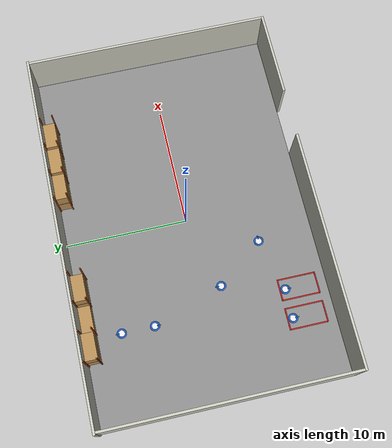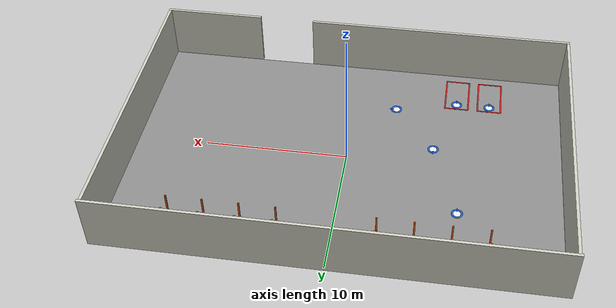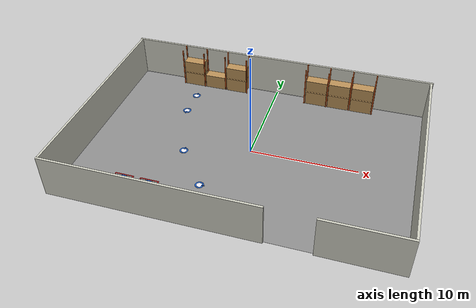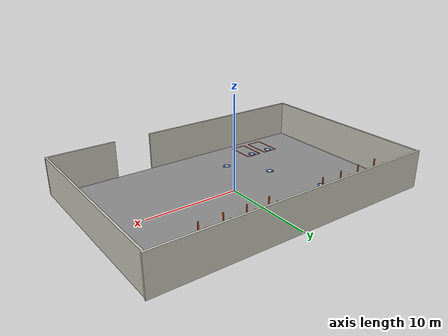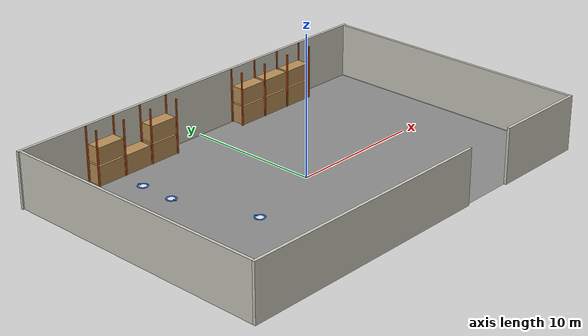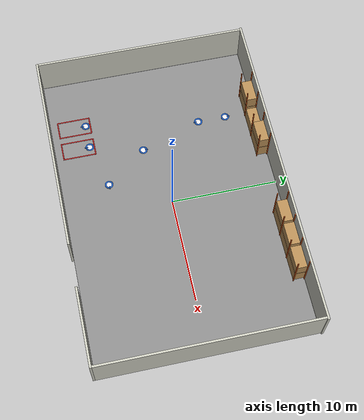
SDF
<sdf version="1.8">
 <world name="warehouse">
  <model name="Floor">
   <static>true</static>
   <link name="link">
    <collision name="collision">
     <geometry><plane><normal>0 0 1</normal><size>30 20</size></plane></geometry>
     <surface><friction><ode><mu>1.0</mu><mu2>1.0</mu2></ode></friction></surface>
    </collision>
    <visual name="visual">
     <geometry><plane><normal>0 0 1</normal><size>30 20</size></plane></geometry>
     <material><ambient>0.55 0.55 0.55 1</ambient><diffuse>0.55 0.55 0.55 1</diffuse></material>
    </visual>
   </link>
  </model>
  <model name="WallNorth">
   <static>true</static>
   <link name="link">
    <collision name="wallnorth_collision">
     <pose>0.000 10.100 2.000 0 0 0</pose>
     <geometry><box><size>30.600 0.200 4.000</size></box></geometry>
    </collision>
    <visual name="wallnorth_visual">
     <pose>0.000 10.100 2.000 0 0 0</pose>
     <geometry><box><size>30.600 0.200 4.000</size></box></geometry>
     <material><ambient>0.80 0.80 0.75 1</ambient><diffuse>0.80 0.80 0.75 1</diffuse></material>
    </visual>
   </link>
  </model>
  <model name="WallSouthWest">
   <static>true</static>
   <link name="link">
    <collision name="wallsouthwest_collision">
     <pose>-5.600 -10.100 2.000 0 0 0</pose>
     <geometry><box><size>19.200 0.200 4.000</size></box></geometry>
    </collision>
    <visual name="wallsouthwest_visual">
     <pose>-5.600 -10.100 2.000 0 0 0</pose>
     <geometry><box><size>19.200 0.200 4.000</size></box></geometry>
     <material><ambient>0.80 0.80 0.75 1</ambient><diffuse>0.80 0.80 0.75 1</diffuse></material>
    </visual>
   </link>
  </model>
  <model name="WallSouthEast">
   <static>true</static>
   <link name="link">
    <collision name="wallsoutheast_collision">
     <pose>11.600 -10.100 2.000 0 0 0</pose>
     <geometry><box><size>7.200 0.200 4.000</size></box></geometry>
    </collision>
    <visual name="wallsoutheast_visual">
     <pose>11.600 -10.100 2.000 0 0 0</pose>
     <geometry><box><size>7.200 0.200 4.000</size></box></geometry>
     <material><ambient>0.80 0.80 0.75 1</ambient><diffuse>0.80 0.80 0.75 1</diffuse></material>
    </visual>
   </link>
  </model>
  <model name="WallEast">
   <static>true</static>
   <link name="link">
    <collision name="walleast_collision">
     <pose>15.100 0.000 2.000 0 0 0</pose>
     <geometry><box><size>0.200 20.000 4.000</size></box></geometry>
    </collision>
    <visual name="walleast_visual">
     <pose>15.100 0.000 2.000 0 0 0</pose>
     <geometry><box><size>0.200 20.000 4.000</size></box></geometry>
     <material><ambient>0.80 0.80 0.75 1</ambient><diffuse>0.80 0.80 0.75 1</diffuse></material>
    </visual>
   </link>
  </model>
  <model name="WallWest">
   <static>true</static>
   <link name="link">
    <collision name="wallwest_collision">
     <pose>-15.100 0.000 2.000 0 0 0</pose>
     <geometry><box><size>0.200 20.000 4.000</size></box></geometry>
    </collision>
    <visual name="wallwest_visual">
     <pose>-15.100 0.000 2.000 0 0 0</pose>
     <geometry><box><size>0.200 20.000 4.000</size></box></geometry>
     <material><ambient>0.80 0.80 0.75 1</ambient><diffuse>0.80 0.80 0.75 1</diffuse></material>
    </visual>
   </link>
  </model>
  <model name="RackRowA_West">
   <static>true</static>
   <link name="link">
    <collision name="a_frame0_front_collision">
     <pose>-10.000 8.940 2.000 0 0 0</pose>
     <geometry><box><size>0.100 0.080 4.000</size></box></geometry>
    </collision>
    <visual name="a_frame0_front_visual">
     <pose>-10.000 8.940 2.000 0 0 0</pose>
     <geometry><box><size>0.100 0.080 4.000</size></box></geometry>
     <material><ambient>0.85 0.35 0.10 1</ambient><diffuse>0.85 0.35 0.10 1</diffuse></material>
    </visual>
    <collision name="a_frame0_rear_collision">
     <pose>-10.000 9.960 2.000 0 0 0</pose>
     <geometry><box><size>0.100 0.080 4.000</size></box></geometry>
    </collision>
    <visual name="a_frame0_rear_visual">
     <pose>-10.000 9.960 2.000 0 0 0</pose>
     <geometry><box><size>0.100 0.080 4.000</size></box></geometry>
     <material><ambient>0.85 0.35 0.10 1</ambient><diffuse>0.85 0.35 0.10 1</diffuse></material>
    </visual>
    <collision name="a_frame1_front_collision">
     <pose>-7.700 8.940 2.000 0 0 0</pose>
     <geometry><box><size>0.100 0.080 4.000</size></box></geometry>
    </collision>
    <visual name="a_frame1_front_visual">
     <pose>-7.700 8.940 2.000 0 0 0</pose>
     <geometry><box><size>0.100 0.080 4.000</size></box></geometry>
     <material><ambient>0.85 0.35 0.10 1</ambient><diffuse>0.85 0.35 0.10 1</diffuse></material>
    </visual>
    <collision name="a_frame1_rear_collision">
     <pose>-7.700 9.960 2.000 0 0 0</pose>
     <geometry><box><size>0.100 0.080 4.000</size></box></geometry>
    </collision>
    <visual name="a_frame1_rear_visual">
     <pose>-7.700 9.960 2.000 0 0 0</pose>
     <geometry><box><size>0.100 0.080 4.000</size></box></geometry>
     <material><ambient>0.85 0.35 0.10 1</ambient><diffuse>0.85 0.35 0.10 1</diffuse></material>
    </visual>
    <collision name="a_frame2_front_collision">
     <pose>-5.400 8.940 2.000 0 0 0</pose>
     <geometry><box><size>0.100 0.080 4.000</size></box></geometry>
    </collision>
    <visual name="a_frame2_front_visual">
     <pose>-5.400 8.940 2.000 0 0 0</pose>
     <geometry><box><size>0.100 0.080 4.000</size></box></geometry>
     <material><ambient>0.85 0.35 0.10 1</ambient><diffuse>0.85 0.35 0.10 1</diffuse></material>
    </visual>
    <collision name="a_frame2_rear_collision">
     <pose>-5.400 9.960 2.000 0 0 0</pose>
     <geometry><box><size>0.100 0.080 4.000</size></box></geometry>
    </collision>
    <visual name="a_frame2_rear_visual">
     <pose>-5.400 9.960 2.000 0 0 0</pose>
     <geometry><box><size>0.100 0.080 4.000</size></box></geometry>
     <material><ambient>0.85 0.35 0.10 1</ambient><diffuse>0.85 0.35 0.10 1</diffuse></material>
    </visual>
    <collision name="a_frame3_front_collision">
     <pose>-3.100 8.940 2.000 0 0 0</pose>
     <geometry><box><size>0.100 0.080 4.000</size></box></geometry>
    </collision>
    <visual name="a_frame3_front_visual">
     <pose>-3.100 8.940 2.000 0 0 0</pose>
     <geometry><box><size>0.100 0.080 4.000</size></box></geometry>
     <material><ambient>0.85 0.35 0.10 1</ambient><diffuse>0.85 0.35 0.10 1</diffuse></material>
    </visual>
    <collision name="a_frame3_rear_collision">
     <pose>-3.100 9.960 2.000 0 0 0</pose>
     <geometry><box><size>0.100 0.080 4.000</size></box></geometry>
    </collision>
    <visual name="a_frame3_rear_visual">
     <pose>-3.100 9.960 2.000 0 0 0</pose>
     <geometry><box><size>0.100 0.080 4.000</size></box></geometry>
     <material><ambient>0.85 0.35 0.10 1</ambient><diffuse>0.85 0.35 0.10 1</diffuse></material>
    </visual>
    <collision name="a_bay0_level1_collision">
     <pose>-8.850 9.450 0.700 0 0 0</pose>
     <geometry><box><size>2.100 1.000 1.400</size></box></geometry>
    </collision>
    <visual name="a_bay0_level1_visual">
     <pose>-8.850 9.450 0.700 0 0 0</pose>
     <geometry><box><size>2.100 1.000 1.400</size></box></geometry>
     <material><ambient>0.72 0.56 0.34 1</ambient><diffuse>0.72 0.56 0.34 1</diffuse></material>
    </visual>
    <collision name="a_bay0_level2_collision">
     <pose>-8.850 9.450 2.100 0 0 0</pose>
     <geometry><box><size>2.100 1.000 1.200</size></box></geometry>
    </collision>
    <visual name="a_bay0_level2_visual">
     <pose>-8.850 9.450 2.100 0 0 0</pose>
     <geometry><box><size>2.100 1.000 1.200</size></box></geometry>
     <material><ambient>0.72 0.56 0.34 1</ambient><diffuse>0.72 0.56 0.34 1</diffuse></material>
    </visual>
    <collision name="a_bay1_level1_collision">
     <pose>-6.550 9.450 0.700 0 0 0</pose>
     <geometry><box><size>2.100 1.000 1.400</size></box></geometry>
    </collision>
    <visual name="a_bay1_level1_visual">
     <pose>-6.550 9.450 0.700 0 0 0</pose>
     <geometry><box><size>2.100 1.000 1.400</size></box></geometry>
     <material><ambient>0.72 0.56 0.34 1</ambient><diffuse>0.72 0.56 0.34 1</diffuse></material>
    </visual>
    <collision name="a_bay2_level1_collision">
     <pose>-4.250 9.450 0.700 0 0 0</pose>
     <geometry><box><size>2.100 1.000 1.400</size></box></geometry>
    </collision>
    <visual name="a_bay2_level1_visual">
     <pose>-4.250 9.450 0.700 0 0 0</pose>
     <geometry><box><size>2.100 1.000 1.400</size></box></geometry>
     <material><ambient>0.72 0.56 0.34 1</ambient><diffuse>0.72 0.56 0.34 1</diffuse></material>
    </visual>
    <collision name="a_bay2_level2_collision">
     <pose>-4.250 9.450 2.100 0 0 0</pose>
     <geometry><box><size>2.100 1.000 1.200</size></box></geometry>
    </collision>
    <visual name="a_bay2_level2_visual">
     <pose>-4.250 9.450 2.100 0 0 0</pose>
     <geometry><box><size>2.100 1.000 1.200</size></box></geometry>
     <material><ambient>0.72 0.56 0.34 1</ambient><diffuse>0.72 0.56 0.34 1</diffuse></material>
    </visual>
   </link>
  </model>
  <model name="RackRowA_East">
   <static>true</static>
   <link name="link">
    <collision name="a_frame0_front_collision">
     <pose>3.100 8.940 2.000 0 0 0</pose>
     <geometry><box><size>0.100 0.080 4.000</size></box></geometry>
    </collision>
    <visual name="a_frame0_front_visual">
     <pose>3.100 8.940 2.000 0 0 0</pose>
     <geometry><box><size>0.100 0.080 4.000</size></box></geometry>
     <material><ambient>0.85 0.35 0.10 1</ambient><diffuse>0.85 0.35 0.10 1</diffuse></material>
    </visual>
    <collision name="a_frame0_rear_collision">
     <pose>3.100 9.960 2.000 0 0 0</pose>
     <geometry><box><size>0.100 0.080 4.000</size></box></geometry>
    </collision>
    <visual name="a_frame0_rear_visual">
     <pose>3.100 9.960 2.000 0 0 0</pose>
     <geometry><box><size>0.100 0.080 4.000</size></box></geometry>
     <material><ambient>0.85 0.35 0.10 1</ambient><diffuse>0.85 0.35 0.10 1</diffuse></material>
    </visual>
    <collision name="a_frame1_front_collision">
     <pose>5.400 8.940 2.000 0 0 0</pose>
     <geometry><box><size>0.100 0.080 4.000</size></box></geometry>
    </collision>
    <visual name="a_frame1_front_visual">
     <pose>5.400 8.940 2.000 0 0 0</pose>
     <geometry><box><size>0.100 0.080 4.000</size></box></geometry>
     <material><ambient>0.85 0.35 0.10 1</ambient><diffuse>0.85 0.35 0.10 1</diffuse></material>
    </visual>
    <collision name="a_frame1_rear_collision">
     <pose>5.400 9.960 2.000 0 0 0</pose>
     <geometry><box><size>0.100 0.080 4.000</size></box></geometry>
    </collision>
    <visual name="a_frame1_rear_visual">
     <pose>5.400 9.960 2.000 0 0 0</pose>
     <geometry><box><size>0.100 0.080 4.000</size></box></geometry>
     <material><ambient>0.85 0.35 0.10 1</ambient><diffuse>0.85 0.35 0.10 1</diffuse></material>
    </visual>
    <collision name="a_frame2_front_collision">
     <pose>7.700 8.940 2.000 0 0 0</pose>
     <geometry><box><size>0.100 0.080 4.000</size></box></geometry>
    </collision>
    <visual name="a_frame2_front_visual">
     <pose>7.700 8.940 2.000 0 0 0</pose>
     <geometry><box><size>0.100 0.080 4.000</size></box></geometry>
     <material><ambient>0.85 0.35 0.10 1</ambient><diffuse>0.85 0.35 0.10 1</diffuse></material>
    </visual>
    <collision name="a_frame2_rear_collision">
     <pose>7.700 9.960 2.000 0 0 0</pose>
     <geometry><box><size>0.100 0.080 4.000</size></box></geometry>
    </collision>
    <visual name="a_frame2_rear_visual">
     <pose>7.700 9.960 2.000 0 0 0</pose>
     <geometry><box><size>0.100 0.080 4.000</size></box></geometry>
     <material><ambient>0.85 0.35 0.10 1</ambient><diffuse>0.85 0.35 0.10 1</diffuse></material>
    </visual>
    <collision name="a_frame3_front_collision">
     <pose>10.000 8.940 2.000 0 0 0</pose>
     <geometry><box><size>0.100 0.080 4.000</size></box></geometry>
    </collision>
    <visual name="a_frame3_front_visual">
     <pose>10.000 8.940 2.000 0 0 0</pose>
     <geometry><box><size>0.100 0.080 4.000</size></box></geometry>
     <material><ambient>0.85 0.35 0.10 1</ambient><diffuse>0.85 0.35 0.10 1</diffuse></material>
    </visual>
    <collision name="a_frame3_rear_collision">
     <pose>10.000 9.960 2.000 0 0 0</pose>
     <geometry><box><size>0.100 0.080 4.000</size></box></geometry>
    </collision>
    <visual name="a_frame3_rear_visual">
     <pose>10.000 9.960 2.000 0 0 0</pose>
     <geometry><box><size>0.100 0.080 4.000</size></box></geometry>
     <material><ambient>0.85 0.35 0.10 1</ambient><diffuse>0.85 0.35 0.10 1</diffuse></material>
    </visual>
    <collision name="a_bay0_level1_collision">
     <pose>4.250 9.450 0.700 0 0 0</pose>
     <geometry><box><size>2.100 1.000 1.400</size></box></geometry>
    </collision>
    <visual name="a_bay0_level1_visual">
     <pose>4.250 9.450 0.700 0 0 0</pose>
     <geometry><box><size>2.100 1.000 1.400</size></box></geometry>
     <material><ambient>0.72 0.56 0.34 1</ambient><diffuse>0.72 0.56 0.34 1</diffuse></material>
    </visual>
    <collision name="a_bay0_level2_collision">
     <pose>4.250 9.450 2.100 0 0 0</pose>
     <geometry><box><size>2.100 1.000 1.200</size></box></geometry>
    </collision>
    <visual name="a_bay0_level2_visual">
     <pose>4.250 9.450 2.100 0 0 0</pose>
     <geometry><box><size>2.100 1.000 1.200</size></box></geometry>
     <material><ambient>0.72 0.56 0.34 1</ambient><diffuse>0.72 0.56 0.34 1</diffuse></material>
    </visual>
    <collision name="a_bay1_level1_collision">
     <pose>6.550 9.450 0.700 0 0 0</pose>
     <geometry><box><size>2.100 1.000 1.400</size></box></geometry>
    </collision>
    <visual name="a_bay1_level1_visual">
     <pose>6.550 9.450 0.700 0 0 0</pose>
     <geometry><box><size>2.100 1.000 1.400</size></box></geometry>
     <material><ambient>0.72 0.56 0.34 1</ambient><diffuse>0.72 0.56 0.34 1</diffuse></material>
    </visual>
    <collision name="a_bay1_level2_collision">
     <pose>6.550 9.450 2.100 0 0 0</pose>
     <geometry><box><size>2.100 1.000 1.200</size></box></geometry>
    </collision>
    <visual name="a_bay1_level2_visual">
     <pose>6.550 9.450 2.100 0 0 0</pose>
     <geometry><box><size>2.100 1.000 1.200</size></box></geometry>
     <material><ambient>0.72 0.56 0.34 1</ambient><diffuse>0.72 0.56 0.34 1</diffuse></material>
    </visual>
    <collision name="a_bay2_level1_collision">
     <pose>8.850 9.450 0.700 0 0 0</pose>
     <geometry><box><size>2.100 1.000 1.400</size></box></geometry>
    </collision>
    <visual name="a_bay2_level1_visual">
     <pose>8.850 9.450 0.700 0 0 0</pose>
     <geometry><box><size>2.100 1.000 1.400</size></box></geometry>
     <material><ambient>0.72 0.56 0.34 1</ambient><diffuse>0.72 0.56 0.34 1</diffuse></material>
    </visual>
    <collision name="a_bay2_level2_collision">
     <pose>8.850 9.450 2.100 0 0 0</pose>
     <geometry><box><size>2.100 1.000 1.200</size></box></geometry>
    </collision>
    <visual name="a_bay2_level2_visual">
     <pose>8.850 9.450 2.100 0 0 0</pose>
     <geometry><box><size>2.100 1.000 1.200</size></box></geometry>
     <material><ambient>0.72 0.56 0.34 1</ambient><diffuse>0.72 0.56 0.34 1</diffuse></material>
    </visual>
   </link>
  </model>
  <model name="ChargeBay1Marking">
   <static>true</static>
   <pose>-9.800 -7.700 0 0 0 0</pose>
   <link name="link">
    <visual name="edge_north">
     <pose>0.000 1.550 0.003 0 0 0</pose>
     <geometry><box><size>1.80 0.10 0.006</size></box></geometry>
     <material><ambient>0.80 0.12 0.12 1</ambient><diffuse>0.80 0.12 0.12 1</diffuse></material>
    </visual>
    <visual name="edge_south">
     <pose>0.000 -1.550 0.003 0 0 0</pose>
     <geometry><box><size>1.80 0.10 0.006</size></box></geometry>
     <material><ambient>0.80 0.12 0.12 1</ambient><diffuse>0.80 0.12 0.12 1</diffuse></material>
    </visual>
    <visual name="edge_west">
     <pose>-0.850 0.000 0.003 0 0 0</pose>
     <geometry><box><size>0.10 3.00 0.006</size></box></geometry>
     <material><ambient>0.80 0.12 0.12 1</ambient><diffuse>0.80 0.12 0.12 1</diffuse></material>
    </visual>
    <visual name="edge_east">
     <pose>0.850 0.000 0.003 0 0 0</pose>
     <geometry><box><size>0.10 3.00 0.006</size></box></geometry>
     <material><ambient>0.80 0.12 0.12 1</ambient><diffuse>0.80 0.12 0.12 1</diffuse></material>
    </visual>
   </link>
  </model>
  <model name="ChargeBay2Marking">
   <static>true</static>
   <pose>-7.400 -7.700 0 0 0 0</pose>
   <link name="link">
    <visual name="edge_north">
     <pose>0.000 1.550 0.003 0 0 0</pose>
     <geometry><box><size>1.80 0.10 0.006</size></box></geometry>
     <material><ambient>0.80 0.12 0.12 1</ambient><diffuse>0.80 0.12 0.12 1</diffuse></material>
    </visual>
    <visual name="edge_south">
     <pose>0.000 -1.550 0.003 0 0 0</pose>
     <geometry><box><size>1.80 0.10 0.006</size></box></geometry>
     <material><ambient>0.80 0.12 0.12 1</ambient><diffuse>0.80 0.12 0.12 1</diffuse></material>
    </visual>
    <visual name="edge_west">
     <pose>-0.850 0.000 0.003 0 0 0</pose>
     <geometry><box><size>0.10 3.00 0.006</size></box></geometry>
     <material><ambient>0.80 0.12 0.12 1</ambient><diffuse>0.80 0.12 0.12 1</diffuse></material>
    </visual>
    <visual name="edge_east">
     <pose>0.850 0.000 0.003 0 0 0</pose>
     <geometry><box><size>0.10 3.00 0.006</size></box></geometry>
     <material><ambient>0.80 0.12 0.12 1</ambient><diffuse>0.80 0.12 0.12 1</diffuse></material>
    </visual>
   </link>
  </model>
  <model name="StationS1Paint">
   <static>true</static>
   <pose>-3.000 -5.500 0 0 0 0</pose>
   <link name="link">
    <visual name="disc">
     <pose>0 0 0.003 0 0 0</pose>
     <geometry><cylinder><radius>0.40</radius><length>0.006</length></cylinder></geometry>
     <material><ambient>0.10 0.35 0.75 1</ambient><diffuse>0.10 0.35 0.75 1</diffuse></material>
    </visual>
    <visual name="core">
     <pose>0 0 0.004 0 0 0</pose>
     <geometry><cylinder><radius>0.26</radius><length>0.006</length></cylinder></geometry>
     <material><ambient>0.92 0.92 0.95 1</ambient><diffuse>0.92 0.92 0.95 1</diffuse></material>
    </visual>
    <visual name="tick">
     <pose>0.330 0.000 0.005 0 0 0.000</pose>
     <geometry><box><size>0.30 0.08 0.006</size></box></geometry>
     <material><ambient>0.10 0.35 0.75 1</ambient><diffuse>0.10 0.35 0.75 1</diffuse></material>
    </visual>
   </link>
  </model>
  <model name="StationS2Paint">
   <static>true</static>
   <pose>-9.800 -6.600 0 0 0 0</pose>
   <link name="link">
    <visual name="disc">
     <pose>0 0 0.003 0 0 0</pose>
     <geometry><cylinder><radius>0.40</radius><length>0.006</length></cylinder></geometry>
     <material><ambient>0.10 0.35 0.75 1</ambient><diffuse>0.10 0.35 0.75 1</diffuse></material>
    </visual>
    <visual name="core">
     <pose>0 0 0.004 0 0 0</pose>
     <geometry><cylinder><radius>0.26</radius><length>0.006</length></cylinder></geometry>
     <material><ambient>0.92 0.92 0.95 1</ambient><diffuse>0.92 0.92 0.95 1</diffuse></material>
    </visual>
    <visual name="tick">
     <pose>0.000 -0.330 0.005 0 0 -1.570796</pose>
     <geometry><box><size>0.30 0.08 0.006</size></box></geometry>
     <material><ambient>0.10 0.35 0.75 1</ambient><diffuse>0.10 0.35 0.75 1</diffuse></material>
    </visual>
   </link>
  </model>
  <model name="StationS3Paint">
   <static>true</static>
   <pose>-7.400 -6.600 0 0 0 0</pose>
   <link name="link">
    <visual name="disc">
     <pose>0 0 0.003 0 0 0</pose>
     <geometry><cylinder><radius>0.40</radius><length>0.006</length></cylinder></geometry>
     <material><ambient>0.10 0.35 0.75 1</ambient><diffuse>0.10 0.35 0.75 1</diffuse></material>
    </visual>
    <visual name="core">
     <pose>0 0 0.004 0 0 0</pose>
     <geometry><cylinder><radius>0.26</radius><length>0.006</length></cylinder></geometry>
     <material><ambient>0.92 0.92 0.95 1</ambient><diffuse>0.92 0.92 0.95 1</diffuse></material>
    </visual>
    <visual name="tick">
     <pose>0.000 -0.330 0.005 0 0 -1.570796</pose>
     <geometry><box><size>0.30 0.08 0.006</size></box></geometry>
     <material><ambient>0.10 0.35 0.75 1</ambient><diffuse>0.10 0.35 0.75 1</diffuse></material>
    </visual>
   </link>
  </model>
  <model name="StationS6Paint">
   <static>true</static>
   <pose>-8.000 7.000 0 0 0 0</pose>
   <link name="link">
    <visual name="disc">
     <pose>0 0 0.003 0 0 0</pose>
     <geometry><cylinder><radius>0.40</radius><length>0.006</length></cylinder></geometry>
     <material><ambient>0.10 0.35 0.75 1</ambient><diffuse>0.10 0.35 0.75 1</diffuse></material>
    </visual>
    <visual name="core">
     <pose>0 0 0.004 0 0 0</pose>
     <geometry><cylinder><radius>0.26</radius><length>0.006</length></cylinder></geometry>
     <material><ambient>0.92 0.92 0.95 1</ambient><diffuse>0.92 0.92 0.95 1</diffuse></material>
    </visual>
    <visual name="tick">
     <pose>0.000 0.330 0.005 0 0 1.570796</pose>
     <geometry><box><size>0.30 0.08 0.006</size></box></geometry>
     <material><ambient>0.10 0.35 0.75 1</ambient><diffuse>0.10 0.35 0.75 1</diffuse></material>
    </visual>
   </link>
  </model>
  <model name="StationS8Paint">
   <static>true</static>
   <pose>-8.000 4.300 0 0 0 0</pose>
   <link name="link">
    <visual name="disc">
     <pose>0 0 0.003 0 0 0</pose>
     <geometry><cylinder><radius>0.40</radius><length>0.006</length></cylinder></geometry>
     <material><ambient>0.10 0.35 0.75 1</ambient><diffuse>0.10 0.35 0.75 1</diffuse></material>
    </visual>
    <visual name="core">
     <pose>0 0 0.004 0 0 0</pose>
     <geometry><cylinder><radius>0.26</radius><length>0.006</length></cylinder></geometry>
     <material><ambient>0.92 0.92 0.95 1</ambient><diffuse>0.92 0.92 0.95 1</diffuse></material>
    </visual>
    <visual name="tick">
     <pose>0.000 -0.330 0.005 0 0 -1.570796</pose>
     <geometry><box><size>0.30 0.08 0.006</size></box></geometry>
     <material><ambient>0.10 0.35 0.75 1</ambient><diffuse>0.10 0.35 0.75 1</diffuse></material>
    </visual>
   </link>
  </model>
  <model name="StationS10Paint">
   <static>true</static>
   <pose>-6.000 -1.600 0 0 0 0</pose>
   <link name="link">
    <visual name="disc">
     <pose>0 0 0.003 0 0 0</pose>
     <geometry><cylinder><radius>0.40</radius><length>0.006</length></cylinder></geometry>
     <material><ambient>0.10 0.35 0.75 1</ambient><diffuse>0.10 0.35 0.75 1</diffuse></material>
    </visual>
    <visual name="core">
     <pose>0 0 0.004 0 0 0</pose>
     <geometry><cylinder><radius>0.26</radius><length>0.006</length></cylinder></geometry>
     <material><ambient>0.92 0.92 0.95 1</ambient><diffuse>0.92 0.92 0.95 1</diffuse></material>
    </visual>
    <visual name="tick">
     <pose>0.000 0.330 0.005 0 0 1.570796</pose>
     <geometry><box><size>0.30 0.08 0.006</size></box></geometry>
     <material><ambient>0.10 0.35 0.75 1</ambient><diffuse>0.10 0.35 0.75 1</diffuse></material>
    </visual>
   </link>
  </model>
 </world>
</sdf>
